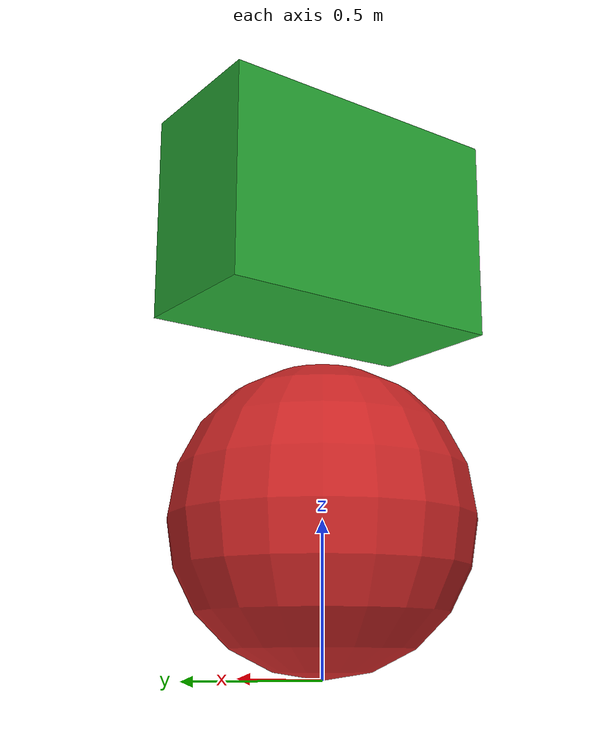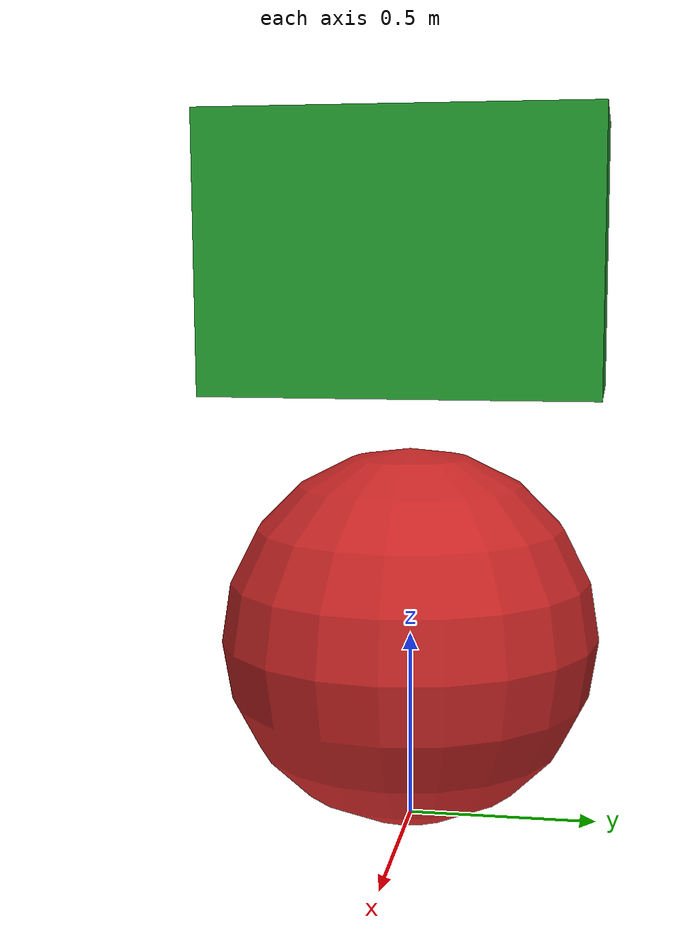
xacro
<?xml version="1.0"?>
<robot name="test" xmlns:xacro="http://www.ros.org/wiki/xacro">

  <xacro:property name = "base_width" value = "0.5"/>
  <xacro:property name = "base_length" value = "1"/>
  <xacro:property name = "base_height" value = "0.7"/>

  <link name="base_link">
    <visual>
      <geometry>
        <sphere radius="0.5"/>
      </geometry>
      <material name="red"/>
      <origin xyz="0 0 0.5" rpy="0 0 0"/>
    </visual>
  </link>

  <xacro:macro name="arm_link" params="prefix">
    <link name="${prefix}_arm_link">
      <visual>
        <geometry>
          <box size="${base_width} ${base_length} ${base_height}"/>
        </geometry>
        <material name="green"/>
        <origin xyz="0 0 0" rpy="0 0 0"/>
      </visual>
    </link>
  </xacro:macro>

  <xacro:arm_link prefix = "right"/>

  <joint name="base_arm_joint" type="fixed">
    <parent link="base_link"/>
    <child link="right_arm_link"/>

    <origin xyz="0 0 1.5" rpy="0 0 0"/>
  </joint>

</robot>
